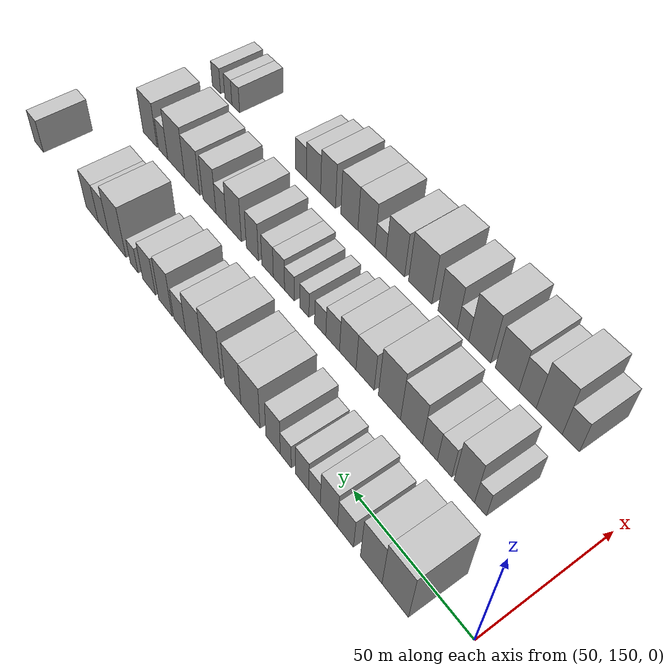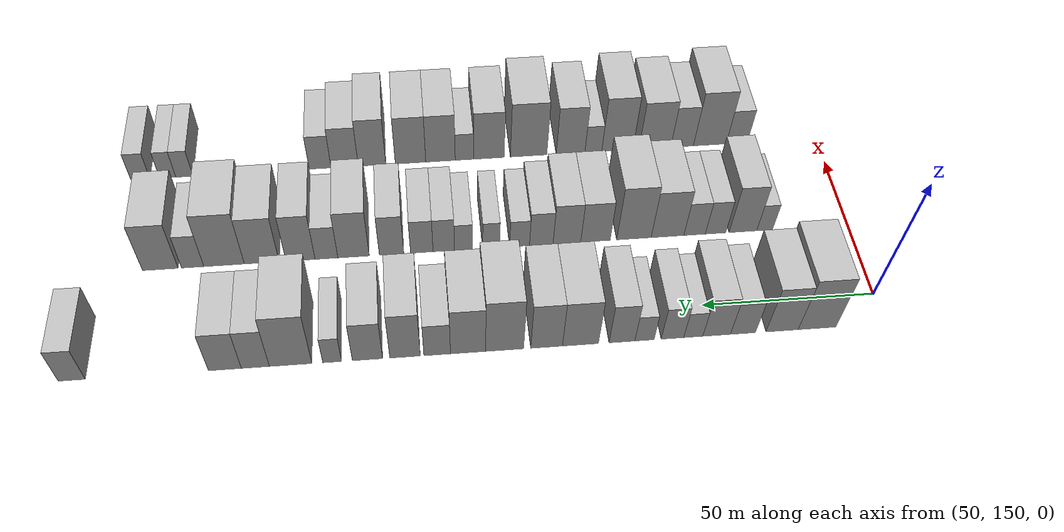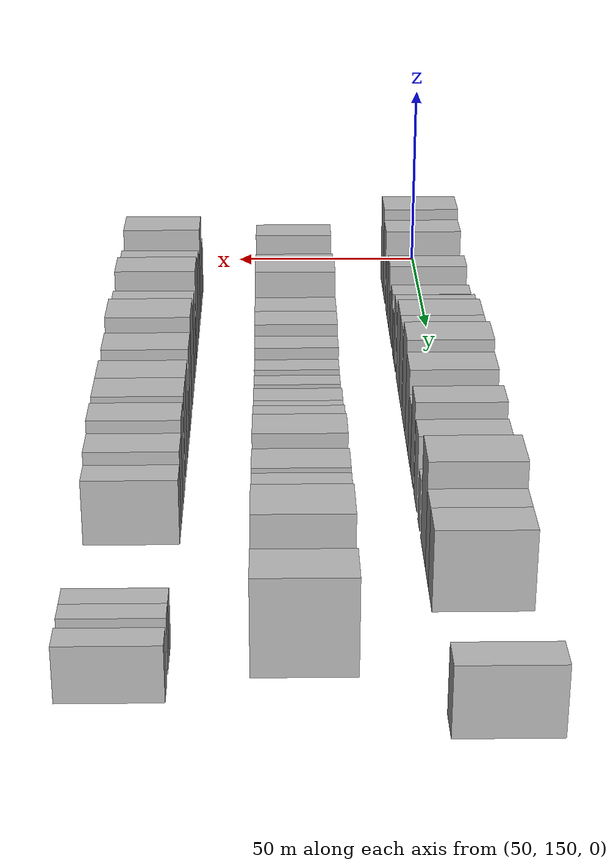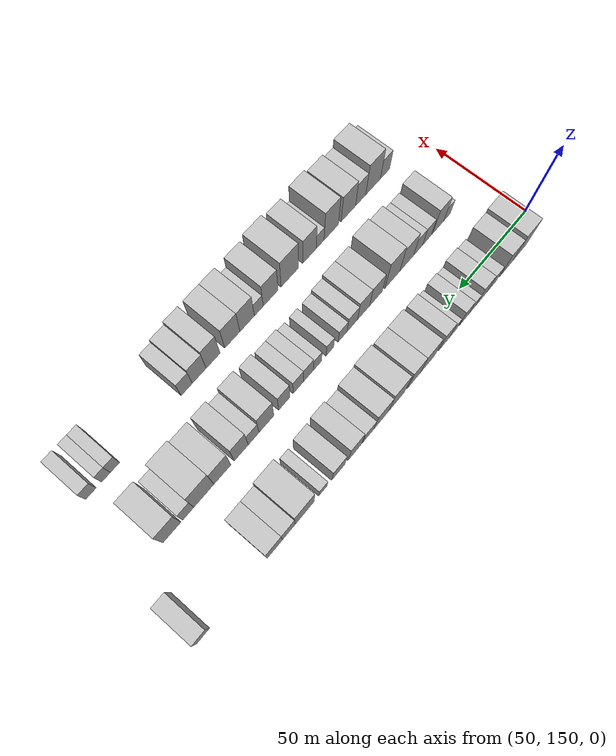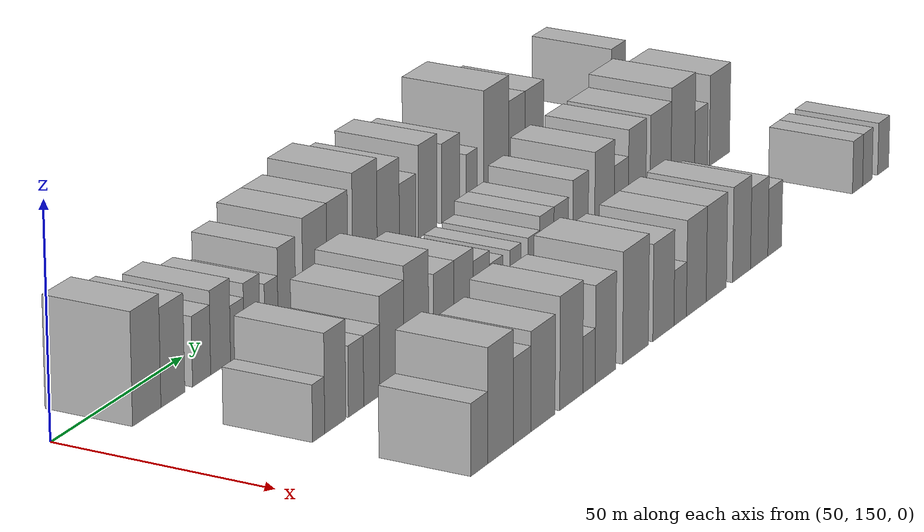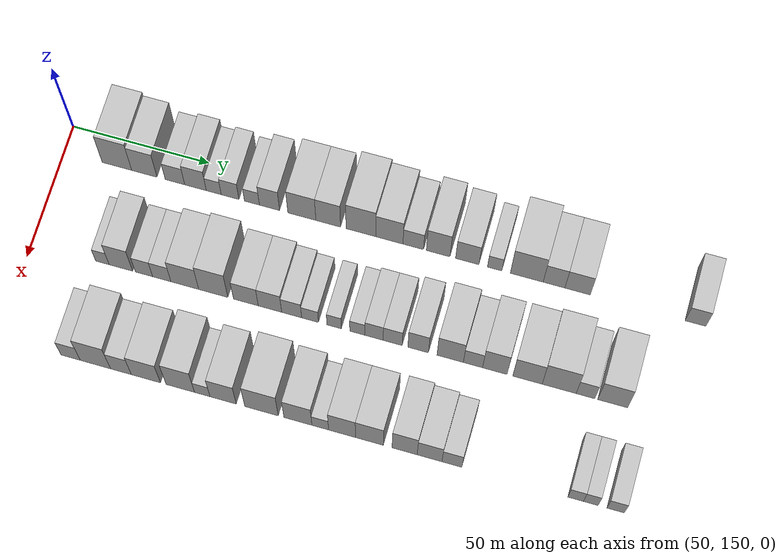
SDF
<sdf version="1.6">
 <world name="default">
  <model name="building_58">
   <static>1</static>
   <pose>50.0000 169.4029 0 0.000000 0.000000 0.000000</pose>
   <link name="link">
    <pose>0 0 12.00 0 0 0</pose>
    <collision name="collision"><geometry><box><size>20.0000 10.8196 24.0000</size></box></geometry></collision>
    <visual name="visual">
     <cast_shadows>0</cast_shadows>
     <geometry><box><size>20.0000 10.8196 24.0000</size></box></geometry>
     <material>
      <script>
       <uri>model://HANNAS_wall/materials/scripts</uri>
       <uri>model://HANNAS_wall/materials/textures</uri>
       <name>vrc/HANNAS_wall</name>
      </script>
     </material>
    </visual>
   </link>
  </model>
  <model name="building_59">
   <static>1</static>
   <pose>50.0000 179.4214 0 0.000000 0.000000 0.000000</pose>
   <link name="link">
    <pose>0 0 10.50 0 0 0</pose>
    <collision name="collision"><geometry><box><size>20.0000 9.2173 21.0000</size></box></geometry></collision>
    <visual name="visual">
     <cast_shadows>0</cast_shadows>
     <geometry><box><size>20.0000 9.2173 21.0000</size></box></geometry>
     <material>
      <script>
       <uri>model://HANNAS_wall/materials/scripts</uri>
       <uri>model://HANNAS_wall/materials/textures</uri>
       <name>vrc/HANNAS_wall</name>
      </script>
     </material>
    </visual>
   </link>
  </model>
  <model name="building_60">
   <static>1</static>
   <pose>50.0000 190.5906 0 0.000000 0.000000 0.000000</pose>
   <link name="link">
    <pose>0 0 7.50 0 0 0</pose>
    <collision name="collision"><geometry><box><size>20.0000 7.1212 15.0000</size></box></geometry></collision>
    <visual name="visual">
     <cast_shadows>0</cast_shadows>
     <geometry><box><size>20.0000 7.1212 15.0000</size></box></geometry>
     <material>
      <script>
       <uri>model://HANNAS_wall/materials/scripts</uri>
       <uri>model://HANNAS_wall/materials/textures</uri>
       <name>vrc/HANNAS_wall</name>
      </script>
     </material>
    </visual>
   </link>
  </model>
  <model name="building_61">
   <static>1</static>
   <pose>50.0000 198.0869 0 0.000000 0.000000 0.000000</pose>
   <link name="link">
    <pose>0 0 9.00 0 0 0</pose>
    <collision name="collision"><geometry><box><size>20.0000 7.8715 18.0000</size></box></geometry></collision>
    <visual name="visual">
     <cast_shadows>0</cast_shadows>
     <geometry><box><size>20.0000 7.8715 18.0000</size></box></geometry>
     <material>
      <script>
       <uri>model://HANNAS_wall/materials/scripts</uri>
       <uri>model://HANNAS_wall/materials/textures</uri>
       <name>vrc/HANNAS_wall</name>
      </script>
     </material>
    </visual>
   </link>
  </model>
  <model name="building_62">
   <static>1</static>
   <pose>50.0000 204.7309 0 0.000000 0.000000 0.000000</pose>
   <link name="link">
    <pose>0 0 6.00 0 0 0</pose>
    <collision name="collision"><geometry><box><size>20.0000 5.4163 12.0000</size></box></geometry></collision>
    <visual name="visual">
     <cast_shadows>0</cast_shadows>
     <geometry><box><size>20.0000 5.4163 12.0000</size></box></geometry>
     <material>
      <script>
       <uri>model://HANNAS_wall/materials/scripts</uri>
       <uri>model://HANNAS_wall/materials/textures</uri>
       <name>vrc/HANNAS_wall</name>
      </script>
     </material>
    </visual>
   </link>
  </model>
  <model name="building_63">
   <static>1</static>
   <pose>50.0000 210.6362 0 0.000000 0.000000 0.000000</pose>
   <link name="link">
    <pose>0 0 7.50 0 0 0</pose>
    <collision name="collision"><geometry><box><size>20.0000 6.3943 15.0000</size></box></geometry></collision>
    <visual name="visual">
     <cast_shadows>0</cast_shadows>
     <geometry><box><size>20.0000 6.3943 15.0000</size></box></geometry>
     <material>
      <script>
       <uri>model://HANNAS_wall/materials/scripts</uri>
       <uri>model://HANNAS_wall/materials/textures</uri>
       <name>vrc/HANNAS_wall</name>
      </script>
     </material>
    </visual>
   </link>
  </model>
  <model name="building_64">
   <static>1</static>
   <pose>50.0000 218.5451 0 0.000000 0.000000 0.000000</pose>
   <link name="link">
    <pose>0 0 6.00 0 0 0</pose>
    <collision name="collision"><geometry><box><size>20.0000 5.4235 12.0000</size></box></geometry></collision>
    <visual name="visual">
     <cast_shadows>0</cast_shadows>
     <geometry><box><size>20.0000 5.4235 12.0000</size></box></geometry>
     <material>
      <script>
       <uri>model://HANNAS_wall/materials/scripts</uri>
       <uri>model://HANNAS_wall/materials/textures</uri>
       <name>vrc/HANNAS_wall</name>
      </script>
     </material>
    </visual>
   </link>
  </model>
  <model name="building_65">
   <static>1</static>
   <pose>50.0000 224.8943 0 0.000000 0.000000 0.000000</pose>
   <link name="link">
    <pose>0 0 9.00 0 0 0</pose>
    <collision name="collision"><geometry><box><size>20.0000 7.2751 18.0000</size></box></geometry></collision>
    <visual name="visual">
     <cast_shadows>0</cast_shadows>
     <geometry><box><size>20.0000 7.2751 18.0000</size></box></geometry>
     <material>
      <script>
       <uri>model://HANNAS_wall/materials/scripts</uri>
       <uri>model://HANNAS_wall/materials/textures</uri>
       <name>vrc/HANNAS_wall</name>
      </script>
     </material>
    </visual>
   </link>
  </model>
  <model name="building_66">
   <static>1</static>
   <pose>50.0000 236.5839 0 0.000000 0.000000 0.000000</pose>
   <link name="link">
    <pose>0 0 10.50 0 0 0</pose>
    <collision name="collision"><geometry><box><size>20.0000 10.1041 21.0000</size></box></geometry></collision>
    <visual name="visual">
     <cast_shadows>0</cast_shadows>
     <geometry><box><size>20.0000 10.1041 21.0000</size></box></geometry>
     <material>
      <script>
       <uri>model://HANNAS_wall/materials/scripts</uri>
       <uri>model://HANNAS_wall/materials/textures</uri>
       <name>vrc/HANNAS_wall</name>
      </script>
     </material>
    </visual>
   </link>
  </model>
  <model name="building_67">
   <static>1</static>
   <pose>50.0000 246.0665 0 0.000000 0.000000 0.000000</pose>
   <link name="link">
    <pose>0 0 10.50 0 0 0</pose>
    <collision name="collision"><geometry><box><size>20.0000 8.8611 21.0000</size></box></geometry></collision>
    <visual name="visual">
     <cast_shadows>0</cast_shadows>
     <geometry><box><size>20.0000 8.8611 21.0000</size></box></geometry>
     <material>
      <script>
       <uri>model://HANNAS_wall/materials/scripts</uri>
       <uri>model://HANNAS_wall/materials/textures</uri>
       <name>vrc/HANNAS_wall</name>
      </script>
     </material>
    </visual>
   </link>
  </model>
  <model name="building_68">
   <static>1</static>
   <pose>50.0000 257.8040 0 0.000000 0.000000 0.000000</pose>
   <link name="link">
    <pose>0 0 12.00 0 0 0</pose>
    <collision name="collision"><geometry><box><size>20.0000 10.6139 24.0000</size></box></geometry></collision>
    <visual name="visual">
     <cast_shadows>0</cast_shadows>
     <geometry><box><size>20.0000 10.6139 24.0000</size></box></geometry>
     <material>
      <script>
       <uri>model://HANNAS_wall/materials/scripts</uri>
       <uri>model://HANNAS_wall/materials/textures</uri>
       <name>vrc/HANNAS_wall</name>
      </script>
     </material>
    </visual>
   </link>
  </model>
  <model name="building_69">
   <static>1</static>
   <pose>50.0000 267.9850 0 0.000000 0.000000 0.000000</pose>
   <link name="link">
    <pose>0 0 10.50 0 0 0</pose>
    <collision name="collision"><geometry><box><size>20.0000 9.7481 21.0000</size></box></geometry></collision>
    <visual name="visual">
     <cast_shadows>0</cast_shadows>
     <geometry><box><size>20.0000 9.7481 21.0000</size></box></geometry>
     <material>
      <script>
       <uri>model://HANNAS_wall/materials/scripts</uri>
       <uri>model://HANNAS_wall/materials/textures</uri>
       <name>vrc/HANNAS_wall</name>
      </script>
     </material>
    </visual>
   </link>
  </model>
  <model name="building_70">
   <static>1</static>
   <pose>50.0000 276.5355 0 0.000000 0.000000 0.000000</pose>
   <link name="link">
    <pose>0 0 7.50 0 0 0</pose>
    <collision name="collision"><geometry><box><size>20.0000 7.3529 15.0000</size></box></geometry></collision>
    <visual name="visual">
     <cast_shadows>0</cast_shadows>
     <geometry><box><size>20.0000 7.3529 15.0000</size></box></geometry>
     <material>
      <script>
       <uri>model://HANNAS_wall/materials/scripts</uri>
       <uri>model://HANNAS_wall/materials/textures</uri>
       <name>vrc/HANNAS_wall</name>
      </script>
     </material>
    </visual>
   </link>
  </model>
  <model name="building_71">
   <static>1</static>
   <pose>50.0000 285.4179 0 0.000000 0.000000 0.000000</pose>
   <link name="link">
    <pose>0 0 10.50 0 0 0</pose>
    <collision name="collision"><geometry><box><size>20.0000 8.4119 21.0000</size></box></geometry></collision>
    <visual name="visual">
     <cast_shadows>0</cast_shadows>
     <geometry><box><size>20.0000 8.4119 21.0000</size></box></geometry>
     <material>
      <script>
       <uri>model://HANNAS_wall/materials/scripts</uri>
       <uri>model://HANNAS_wall/materials/textures</uri>
       <name>vrc/HANNAS_wall</name>
      </script>
     </material>
    </visual>
   </link>
  </model>
  <model name="building_72">
   <static>1</static>
   <pose>50.0000 295.7765 0 0.000000 0.000000 0.000000</pose>
   <link name="link">
    <pose>0 0 9.00 0 0 0</pose>
    <collision name="collision"><geometry><box><size>20.0000 8.3053 18.0000</size></box></geometry></collision>
    <visual name="visual">
     <cast_shadows>0</cast_shadows>
     <geometry><box><size>20.0000 8.3053 18.0000</size></box></geometry>
     <material>
      <script>
       <uri>model://HANNAS_wall/materials/scripts</uri>
       <uri>model://HANNAS_wall/materials/textures</uri>
       <name>vrc/HANNAS_wall</name>
      </script>
     </material>
    </visual>
   </link>
  </model>
  <model name="building_73">
   <static>1</static>
   <pose>50.0000 305.4946 0 0.000000 0.000000 0.000000</pose>
   <link name="link">
    <pose>0 0 6.00 0 0 0</pose>
    <collision name="collision"><geometry><box><size>20.0000 5.1309 12.0000</size></box></geometry></collision>
    <visual name="visual">
     <cast_shadows>0</cast_shadows>
     <geometry><box><size>20.0000 5.1309 12.0000</size></box></geometry>
     <material>
      <script>
       <uri>model://HANNAS_wall/materials/scripts</uri>
       <uri>model://HANNAS_wall/materials/textures</uri>
       <name>vrc/HANNAS_wall</name>
      </script>
     </material>
    </visual>
   </link>
  </model>
  <model name="building_74">
   <static>1</static>
   <pose>50.0000 316.8688 0 0.000000 0.000000 0.000000</pose>
   <link name="link">
    <pose>0 0 12.00 0 0 0</pose>
    <collision name="collision"><geometry><box><size>20.0000 11.6175 24.0000</size></box></geometry></collision>
    <visual name="visual">
     <cast_shadows>0</cast_shadows>
     <geometry><box><size>20.0000 11.6175 24.0000</size></box></geometry>
     <material>
      <script>
       <uri>model://HANNAS_wall/materials/scripts</uri>
       <uri>model://HANNAS_wall/materials/textures</uri>
       <name>vrc/HANNAS_wall</name>
      </script>
     </material>
    </visual>
   </link>
  </model>
  <model name="building_75">
   <static>1</static>
   <pose>50.0000 326.4944 0 0.000000 0.000000 0.000000</pose>
   <link name="link">
    <pose>0 0 9.00 0 0 0</pose>
    <collision name="collision"><geometry><box><size>20.0000 7.6337 18.0000</size></box></geometry></collision>
    <visual name="visual">
     <cast_shadows>0</cast_shadows>
     <geometry><box><size>20.0000 7.6337 18.0000</size></box></geometry>
     <material>
      <script>
       <uri>model://HANNAS_wall/materials/scripts</uri>
       <uri>model://HANNAS_wall/materials/textures</uri>
       <name>vrc/HANNAS_wall</name>
      </script>
     </material>
    </visual>
   </link>
  </model>
  <model name="building_76">
   <static>1</static>
   <pose>50.0000 334.7867 0 0.000000 0.000000 0.000000</pose>
   <link name="link">
    <pose>0 0 9.00 0 0 0</pose>
    <collision name="collision"><geometry><box><size>20.0000 8.9509 18.0000</size></box></geometry></collision>
    <visual name="visual">
     <cast_shadows>0</cast_shadows>
     <geometry><box><size>20.0000 8.9509 18.0000</size></box></geometry>
     <material>
      <script>
       <uri>model://HANNAS_wall/materials/scripts</uri>
       <uri>model://HANNAS_wall/materials/textures</uri>
       <name>vrc/HANNAS_wall</name>
      </script>
     </material>
    </visual>
   </link>
  </model>
  <model name="building_77">
   <static>1</static>
   <pose>50.0000 376.1292 0 0.000000 0.000000 0.000000</pose>
   <link name="link">
    <pose>0 0 7.50 0 0 0</pose>
    <collision name="collision"><geometry><box><size>20.0000 7.2447 15.0000</size></box></geometry></collision>
    <visual name="visual">
     <cast_shadows>0</cast_shadows>
     <geometry><box><size>20.0000 7.2447 15.0000</size></box></geometry>
     <material>
      <script>
       <uri>model://HANNAS_wall/materials/scripts</uri>
       <uri>model://HANNAS_wall/materials/textures</uri>
       <name>vrc/HANNAS_wall</name>
      </script>
     </material>
    </visual>
   </link>
  </model>
  <model name="building_139">
   <static>1</static>
   <pose>85.0000 175.6391 0 0.000000 0.000000 0.000000</pose>
   <link name="link">
    <pose>0 0 6.00 0 0 0</pose>
    <collision name="collision"><geometry><box><size>20.0000 4.8430 12.0000</size></box></geometry></collision>
    <visual name="visual">
     <cast_shadows>0</cast_shadows>
     <geometry><box><size>20.0000 4.8430 12.0000</size></box></geometry>
     <material>
      <script>
       <uri>model://HANNAS_wall/materials/scripts</uri>
       <uri>model://HANNAS_wall/materials/textures</uri>
       <name>vrc/HANNAS_wall</name>
      </script>
     </material>
    </visual>
   </link>
  </model>
  <model name="building_140">
   <static>1</static>
   <pose>85.0000 182.2933 0 0.000000 0.000000 0.000000</pose>
   <link name="link">
    <pose>0 0 10.50 0 0 0</pose>
    <collision name="collision"><geometry><box><size>20.0000 8.4655 21.0000</size></box></geometry></collision>
    <visual name="visual">
     <cast_shadows>0</cast_shadows>
     <geometry><box><size>20.0000 8.4655 21.0000</size></box></geometry>
     <material>
      <script>
       <uri>model://HANNAS_wall/materials/scripts</uri>
       <uri>model://HANNAS_wall/materials/textures</uri>
       <name>vrc/HANNAS_wall</name>
      </script>
     </material>
    </visual>
   </link>
  </model>
  <model name="building_141">
   <static>1</static>
   <pose>85.0000 190.6398 0 0.000000 0.000000 0.000000</pose>
   <link name="link">
    <pose>0 0 7.50 0 0 0</pose>
    <collision name="collision"><geometry><box><size>20.0000 6.2275 15.0000</size></box></geometry></collision>
    <visual name="visual">
     <cast_shadows>0</cast_shadows>
     <geometry><box><size>20.0000 6.2275 15.0000</size></box></geometry>
     <material>
      <script>
       <uri>model://HANNAS_wall/materials/scripts</uri>
       <uri>model://HANNAS_wall/materials/textures</uri>
       <name>vrc/HANNAS_wall</name>
      </script>
     </material>
    </visual>
   </link>
  </model>
  <model name="building_142">
   <static>1</static>
   <pose>85.0000 197.0295 0 0.000000 0.000000 0.000000</pose>
   <link name="link">
    <pose>0 0 7.50 0 0 0</pose>
    <collision name="collision"><geometry><box><size>20.0000 6.5520 15.0000</size></box></geometry></collision>
    <visual name="visual">
     <cast_shadows>0</cast_shadows>
     <geometry><box><size>20.0000 6.5520 15.0000</size></box></geometry>
     <material>
      <script>
       <uri>model://HANNAS_wall/materials/scripts</uri>
       <uri>model://HANNAS_wall/materials/textures</uri>
       <name>vrc/HANNAS_wall</name>
      </script>
     </material>
    </visual>
   </link>
  </model>
  <model name="building_143">
   <static>1</static>
   <pose>85.0000 205.2794 0 0.000000 0.000000 0.000000</pose>
   <link name="link">
    <pose>0 0 10.50 0 0 0</pose>
    <collision name="collision"><geometry><box><size>20.0000 9.9479 21.0000</size></box></geometry></collision>
    <visual name="visual">
     <cast_shadows>0</cast_shadows>
     <geometry><box><size>20.0000 9.9479 21.0000</size></box></geometry>
     <material>
      <script>
       <uri>model://HANNAS_wall/materials/scripts</uri>
       <uri>model://HANNAS_wall/materials/textures</uri>
       <name>vrc/HANNAS_wall</name>
      </script>
     </material>
    </visual>
   </link>
  </model>
  <model name="building_144">
   <static>1</static>
   <pose>85.0000 215.4670 0 0.000000 0.000000 0.000000</pose>
   <link name="link">
    <pose>0 0 12.00 0 0 0</pose>
    <collision name="collision"><geometry><box><size>20.0000 10.4274 24.0000</size></box></geometry></collision>
    <visual name="visual">
     <cast_shadows>0</cast_shadows>
     <geometry><box><size>20.0000 10.4274 24.0000</size></box></geometry>
     <material>
      <script>
       <uri>model://HANNAS_wall/materials/scripts</uri>
       <uri>model://HANNAS_wall/materials/textures</uri>
       <name>vrc/HANNAS_wall</name>
      </script>
     </material>
    </visual>
   </link>
  </model>
  <model name="building_145">
   <static>1</static>
   <pose>85.0000 227.1055 0 0.000000 0.000000 0.000000</pose>
   <link name="link">
    <pose>0 0 9.00 0 0 0</pose>
    <collision name="collision"><geometry><box><size>20.0000 8.8495 18.0000</size></box></geometry></collision>
    <visual name="visual">
     <cast_shadows>0</cast_shadows>
     <geometry><box><size>20.0000 8.8495 18.0000</size></box></geometry>
     <material>
      <script>
       <uri>model://HANNAS_wall/materials/scripts</uri>
       <uri>model://HANNAS_wall/materials/textures</uri>
       <name>vrc/HANNAS_wall</name>
      </script>
     </material>
    </visual>
   </link>
  </model>
  <model name="building_146">
   <static>1</static>
   <pose>85.0000 235.6977 0 0.000000 0.000000 0.000000</pose>
   <link name="link">
    <pose>0 0 9.00 0 0 0</pose>
    <collision name="collision"><geometry><box><size>20.0000 8.3350 18.0000</size></box></geometry></collision>
    <visual name="visual">
     <cast_shadows>0</cast_shadows>
     <geometry><box><size>20.0000 8.3350 18.0000</size></box></geometry>
     <material>
      <script>
       <uri>model://HANNAS_wall/materials/scripts</uri>
       <uri>model://HANNAS_wall/materials/textures</uri>
       <name>vrc/HANNAS_wall</name>
      </script>
     </material>
    </visual>
   </link>
  </model>
  <model name="building_147">
   <static>1</static>
   <pose>85.0000 243.4064 0 0.000000 0.000000 0.000000</pose>
   <link name="link">
    <pose>0 0 7.50 0 0 0</pose>
    <collision name="collision"><geometry><box><size>20.0000 7.0822 15.0000</size></box></geometry></collision>
    <visual name="visual">
     <cast_shadows>0</cast_shadows>
     <geometry><box><size>20.0000 7.0822 15.0000</size></box></geometry>
     <material>
      <script>
       <uri>model://HANNAS_wall/materials/scripts</uri>
       <uri>model://HANNAS_wall/materials/textures</uri>
       <name>vrc/HANNAS_wall</name>
      </script>
     </material>
    </visual>
   </link>
  </model>
  <model name="building_148">
   <static>1</static>
   <pose>85.0000 249.9218 0 0.000000 0.000000 0.000000</pose>
   <link name="link">
    <pose>0 0 6.00 0 0 0</pose>
    <collision name="collision"><geometry><box><size>20.0000 5.9487 12.0000</size></box></geometry></collision>
    <visual name="visual">
     <cast_shadows>0</cast_shadows>
     <geometry><box><size>20.0000 5.9487 12.0000</size></box></geometry>
     <material>
      <script>
       <uri>model://HANNAS_wall/materials/scripts</uri>
       <uri>model://HANNAS_wall/materials/textures</uri>
       <name>vrc/HANNAS_wall</name>
      </script>
     </material>
    </visual>
   </link>
  </model>
  <model name="building_149">
   <static>1</static>
   <pose>85.0000 258.4388 0 0.000000 0.000000 0.000000</pose>
   <link name="link">
    <pose>0 0 6.00 0 0 0</pose>
    <collision name="collision"><geometry><box><size>20.0000 5.0853 12.0000</size></box></geometry></collision>
    <visual name="visual">
     <cast_shadows>0</cast_shadows>
     <geometry><box><size>20.0000 5.0853 12.0000</size></box></geometry>
     <material>
      <script>
       <uri>model://HANNAS_wall/materials/scripts</uri>
       <uri>model://HANNAS_wall/materials/textures</uri>
       <name>vrc/HANNAS_wall</name>
      </script>
     </material>
    </visual>
   </link>
  </model>
  <model name="building_150">
   <static>1</static>
   <pose>85.0000 266.6696 0 0.000000 0.000000 0.000000</pose>
   <link name="link">
    <pose>0 0 6.00 0 0 0</pose>
    <collision name="collision"><geometry><box><size>20.0000 5.3763 12.0000</size></box></geometry></collision>
    <visual name="visual">
     <cast_shadows>0</cast_shadows>
     <geometry><box><size>20.0000 5.3763 12.0000</size></box></geometry>
     <material>
      <script>
       <uri>model://HANNAS_wall/materials/scripts</uri>
       <uri>model://HANNAS_wall/materials/textures</uri>
       <name>vrc/HANNAS_wall</name>
      </script>
     </material>
    </visual>
   </link>
  </model>
  <model name="building_151">
   <static>1</static>
   <pose>85.0000 272.5526 0 0.000000 0.000000 0.000000</pose>
   <link name="link">
    <pose>0 0 7.50 0 0 0</pose>
    <collision name="collision"><geometry><box><size>20.0000 6.3896 15.0000</size></box></geometry></collision>
    <visual name="visual">
     <cast_shadows>0</cast_shadows>
     <geometry><box><size>20.0000 6.3896 15.0000</size></box></geometry>
     <material>
      <script>
       <uri>model://HANNAS_wall/materials/scripts</uri>
       <uri>model://HANNAS_wall/materials/textures</uri>
       <name>vrc/HANNAS_wall</name>
      </script>
     </material>
    </visual>
   </link>
  </model>
  <model name="building_152">
   <static>1</static>
   <pose>85.0000 279.0892 0 0.000000 0.000000 0.000000</pose>
   <link name="link">
    <pose>0 0 7.50 0 0 0</pose>
    <collision name="collision"><geometry><box><size>20.0000 6.6836 15.0000</size></box></geometry></collision>
    <visual name="visual">
     <cast_shadows>0</cast_shadows>
     <geometry><box><size>20.0000 6.6836 15.0000</size></box></geometry>
     <material>
      <script>
       <uri>model://HANNAS_wall/materials/scripts</uri>
       <uri>model://HANNAS_wall/materials/textures</uri>
       <name>vrc/HANNAS_wall</name>
      </script>
     </material>
    </visual>
   </link>
  </model>
  <model name="building_153">
   <static>1</static>
   <pose>85.0000 288.0435 0 0.000000 0.000000 0.000000</pose>
   <link name="link">
    <pose>0 0 9.00 0 0 0</pose>
    <collision name="collision"><geometry><box><size>20.0000 7.2252 18.0000</size></box></geometry></collision>
    <visual name="visual">
     <cast_shadows>0</cast_shadows>
     <geometry><box><size>20.0000 7.2252 18.0000</size></box></geometry>
     <material>
      <script>
       <uri>model://HANNAS_wall/materials/scripts</uri>
       <uri>model://HANNAS_wall/materials/textures</uri>
       <name>vrc/HANNAS_wall</name>
      </script>
     </material>
    </visual>
   </link>
  </model>
  <model name="building_154">
   <static>1</static>
   <pose>85.0000 299.2843 0 0.000000 0.000000 0.000000</pose>
   <link name="link">
    <pose>0 0 10.50 0 0 0</pose>
    <collision name="collision"><geometry><box><size>20.0000 9.2564 21.0000</size></box></geometry></collision>
    <visual name="visual">
     <cast_shadows>0</cast_shadows>
     <geometry><box><size>20.0000 9.2564 21.0000</size></box></geometry>
     <material>
      <script>
       <uri>model://HANNAS_wall/materials/scripts</uri>
       <uri>model://HANNAS_wall/materials/textures</uri>
       <name>vrc/HANNAS_wall</name>
      </script>
     </material>
    </visual>
   </link>
  </model>
  <model name="building_155">
   <static>1</static>
   <pose>85.0000 307.2682 0 0.000000 0.000000 0.000000</pose>
   <link name="link">
    <pose>0 0 7.50 0 0 0</pose>
    <collision name="collision"><geometry><box><size>20.0000 6.7113 15.0000</size></box></geometry></collision>
    <visual name="visual">
     <cast_shadows>0</cast_shadows>
     <geometry><box><size>20.0000 6.7113 15.0000</size></box></geometry>
     <material>
      <script>
       <uri>model://HANNAS_wall/materials/scripts</uri>
       <uri>model://HANNAS_wall/materials/textures</uri>
       <name>vrc/HANNAS_wall</name>
      </script>
     </material>
    </visual>
   </link>
  </model>
  <model name="building_156">
   <static>1</static>
   <pose>85.0000 314.8908 0 0.000000 0.000000 0.000000</pose>
   <link name="link">
    <pose>0 0 10.50 0 0 0</pose>
    <collision name="collision"><geometry><box><size>20.0000 8.5340 21.0000</size></box></geometry></collision>
    <visual name="visual">
     <cast_shadows>0</cast_shadows>
     <geometry><box><size>20.0000 8.5340 21.0000</size></box></geometry>
     <material>
      <script>
       <uri>model://HANNAS_wall/materials/scripts</uri>
       <uri>model://HANNAS_wall/materials/textures</uri>
       <name>vrc/HANNAS_wall</name>
      </script>
     </material>
    </visual>
   </link>
  </model>
  <model name="building_157">
   <static>1</static>
   <pose>85.0000 326.2635 0 0.000000 0.000000 0.000000</pose>
   <link name="link">
    <pose>0 0 10.50 0 0 0</pose>
    <collision name="collision"><geometry><box><size>20.0000 10.2114 21.0000</size></box></geometry></collision>
    <visual name="visual">
     <cast_shadows>0</cast_shadows>
     <geometry><box><size>20.0000 10.2114 21.0000</size></box></geometry>
     <material>
      <script>
       <uri>model://HANNAS_wall/materials/scripts</uri>
       <uri>model://HANNAS_wall/materials/textures</uri>
       <name>vrc/HANNAS_wall</name>
      </script>
     </material>
    </visual>
   </link>
  </model>
  <model name="building_158">
   <static>1</static>
   <pose>85.0000 337.2793 0 0.000000 0.000000 0.000000</pose>
   <link name="link">
    <pose>0 0 12.00 0 0 0</pose>
    <collision name="collision"><geometry><box><size>20.0000 11.8201 24.0000</size></box></geometry></collision>
    <visual name="visual">
     <cast_shadows>0</cast_shadows>
     <geometry><box><size>20.0000 11.8201 24.0000</size></box></geometry>
     <material>
      <script>
       <uri>model://HANNAS_wall/materials/scripts</uri>
       <uri>model://HANNAS_wall/materials/textures</uri>
       <name>vrc/HANNAS_wall</name>
      </script>
     </material>
    </visual>
   </link>
  </model>
  <model name="building_159">
   <static>1</static>
   <pose>85.0000 346.4257 0 0.000000 0.000000 0.000000</pose>
   <link name="link">
    <pose>0 0 7.50 0 0 0</pose>
    <collision name="collision"><geometry><box><size>20.0000 6.4727 15.0000</size></box></geometry></collision>
    <visual name="visual">
     <cast_shadows>0</cast_shadows>
     <geometry><box><size>20.0000 6.4727 15.0000</size></box></geometry>
     <material>
      <script>
       <uri>model://HANNAS_wall/materials/scripts</uri>
       <uri>model://HANNAS_wall/materials/textures</uri>
       <name>vrc/HANNAS_wall</name>
      </script>
     </material>
    </visual>
   </link>
  </model>
  <model name="building_160">
   <static>1</static>
   <pose>85.0000 355.8155 0 0.000000 0.000000 0.000000</pose>
   <link name="link">
    <pose>0 0 10.50 0 0 0</pose>
    <collision name="collision"><geometry><box><size>20.0000 10.3069 21.0000</size></box></geometry></collision>
    <visual name="visual">
     <cast_shadows>0</cast_shadows>
     <geometry><box><size>20.0000 10.3069 21.0000</size></box></geometry>
     <material>
      <script>
       <uri>model://HANNAS_wall/materials/scripts</uri>
       <uri>model://HANNAS_wall/materials/textures</uri>
       <name>vrc/HANNAS_wall</name>
      </script>
     </material>
    </visual>
   </link>
  </model>
  <model name="building_223">
   <static>1</static>
   <pose>120.0000 175.9668 0 0.000000 0.000000 0.000000</pose>
   <link name="link">
    <pose>0 0 7.50 0 0 0</pose>
    <collision name="collision"><geometry><box><size>20.0000 6.8644 15.0000</size></box></geometry></collision>
    <visual name="visual">
     <cast_shadows>0</cast_shadows>
     <geometry><box><size>20.0000 6.8644 15.0000</size></box></geometry>
     <material>
      <script>
       <uri>model://HANNAS_wall/materials/scripts</uri>
       <uri>model://HANNAS_wall/materials/textures</uri>
       <name>vrc/HANNAS_wall</name>
      </script>
     </material>
    </visual>
   </link>
  </model>
  <model name="building_224">
   <static>1</static>
   <pose>120.0000 184.7615 0 0.000000 0.000000 0.000000</pose>
   <link name="link">
    <pose>0 0 12.00 0 0 0</pose>
    <collision name="collision"><geometry><box><size>20.0000 10.7251 24.0000</size></box></geometry></collision>
    <visual name="visual">
     <cast_shadows>0</cast_shadows>
     <geometry><box><size>20.0000 10.7251 24.0000</size></box></geometry>
     <material>
      <script>
       <uri>model://HANNAS_wall/materials/scripts</uri>
       <uri>model://HANNAS_wall/materials/textures</uri>
       <name>vrc/HANNAS_wall</name>
      </script>
     </material>
    </visual>
   </link>
  </model>
  <model name="building_225">
   <static>1</static>
   <pose>120.0000 193.8026 0 0.000000 0.000000 0.000000</pose>
   <link name="link">
    <pose>0 0 9.00 0 0 0</pose>
    <collision name="collision"><geometry><box><size>20.0000 7.3569 18.0000</size></box></geometry></collision>
    <visual name="visual">
     <cast_shadows>0</cast_shadows>
     <geometry><box><size>20.0000 7.3569 18.0000</size></box></geometry>
     <material>
      <script>
       <uri>model://HANNAS_wall/materials/scripts</uri>
       <uri>model://HANNAS_wall/materials/textures</uri>
       <name>vrc/HANNAS_wall</name>
      </script>
     </material>
    </visual>
   </link>
  </model>
  <model name="building_226">
   <static>1</static>
   <pose>120.0000 202.6344 0 0.000000 0.000000 0.000000</pose>
   <link name="link">
    <pose>0 0 10.50 0 0 0</pose>
    <collision name="collision"><geometry><box><size>20.0000 10.3068 21.0000</size></box></geometry></collision>
    <visual name="visual">
     <cast_shadows>0</cast_shadows>
     <geometry><box><size>20.0000 10.3068 21.0000</size></box></geometry>
     <material>
      <script>
       <uri>model://HANNAS_wall/materials/scripts</uri>
       <uri>model://HANNAS_wall/materials/textures</uri>
       <name>vrc/HANNAS_wall</name>
      </script>
     </material>
    </visual>
   </link>
  </model>
  <model name="building_227">
   <static>1</static>
   <pose>120.0000 214.8118 0 0.000000 0.000000 0.000000</pose>
   <link name="link">
    <pose>0 0 12.00 0 0 0</pose>
    <collision name="collision"><geometry><box><size>20.0000 10.0480 24.0000</size></box></geometry></collision>
    <visual name="visual">
     <cast_shadows>0</cast_shadows>
     <geometry><box><size>20.0000 10.0480 24.0000</size></box></geometry>
     <material>
      <script>
       <uri>model://HANNAS_wall/materials/scripts</uri>
       <uri>model://HANNAS_wall/materials/textures</uri>
       <name>vrc/HANNAS_wall</name>
      </script>
     </material>
    </visual>
   </link>
  </model>
  <model name="building_228">
   <static>1</static>
   <pose>120.0000 222.5471 0 0.000000 0.000000 0.000000</pose>
   <link name="link">
    <pose>0 0 6.00 0 0 0</pose>
    <collision name="collision"><geometry><box><size>20.0000 5.4225 12.0000</size></box></geometry></collision>
    <visual name="visual">
     <cast_shadows>0</cast_shadows>
     <geometry><box><size>20.0000 5.4225 12.0000</size></box></geometry>
     <material>
      <script>
       <uri>model://HANNAS_wall/materials/scripts</uri>
       <uri>model://HANNAS_wall/materials/textures</uri>
       <name>vrc/HANNAS_wall</name>
      </script>
     </material>
    </visual>
   </link>
  </model>
  <model name="building_229">
   <static>1</static>
   <pose>120.0000 229.8653 0 0.000000 0.000000 0.000000</pose>
   <link name="link">
    <pose>0 0 10.50 0 0 0</pose>
    <collision name="collision"><geometry><box><size>20.0000 9.2140 21.0000</size></box></geometry></collision>
    <visual name="visual">
     <cast_shadows>0</cast_shadows>
     <geometry><box><size>20.0000 9.2140 21.0000</size></box></geometry>
     <material>
      <script>
       <uri>model://HANNAS_wall/materials/scripts</uri>
       <uri>model://HANNAS_wall/materials/textures</uri>
       <name>vrc/HANNAS_wall</name>
      </script>
     </material>
    </visual>
   </link>
  </model>
  <model name="building_230">
   <static>1</static>
   <pose>120.0000 243.3256 0 0.000000 0.000000 0.000000</pose>
   <link name="link">
    <pose>0 0 12.00 0 0 0</pose>
    <collision name="collision"><geometry><box><size>20.0000 11.7066 24.0000</size></box></geometry></collision>
    <visual name="visual">
     <cast_shadows>0</cast_shadows>
     <geometry><box><size>20.0000 11.7066 24.0000</size></box></geometry>
     <material>
      <script>
       <uri>model://HANNAS_wall/materials/scripts</uri>
       <uri>model://HANNAS_wall/materials/textures</uri>
       <name>vrc/HANNAS_wall</name>
      </script>
     </material>
    </visual>
   </link>
  </model>
  <model name="building_231">
   <static>1</static>
   <pose>120.0000 256.0604 0 0.000000 0.000000 0.000000</pose>
   <link name="link">
    <pose>0 0 10.50 0 0 0</pose>
    <collision name="collision"><geometry><box><size>20.0000 9.7629 21.0000</size></box></geometry></collision>
    <visual name="visual">
     <cast_shadows>0</cast_shadows>
     <geometry><box><size>20.0000 9.7629 21.0000</size></box></geometry>
     <material>
      <script>
       <uri>model://HANNAS_wall/materials/scripts</uri>
       <uri>model://HANNAS_wall/materials/textures</uri>
       <name>vrc/HANNAS_wall</name>
      </script>
     </material>
    </visual>
   </link>
  </model>
  <model name="building_232">
   <static>1</static>
   <pose>120.0000 263.8484 0 0.000000 0.000000 0.000000</pose>
   <link name="link">
    <pose>0 0 6.00 0 0 0</pose>
    <collision name="collision"><geometry><box><size>20.0000 5.8131 12.0000</size></box></geometry></collision>
    <visual name="visual">
     <cast_shadows>0</cast_shadows>
     <geometry><box><size>20.0000 5.8131 12.0000</size></box></geometry>
     <material>
      <script>
       <uri>model://HANNAS_wall/materials/scripts</uri>
       <uri>model://HANNAS_wall/materials/textures</uri>
       <name>vrc/HANNAS_wall</name>
      </script>
     </material>
    </visual>
   </link>
  </model>
  <model name="building_233">
   <static>1</static>
   <pose>120.0000 271.4404 0 0.000000 0.000000 0.000000</pose>
   <link name="link">
    <pose>0 0 10.50 0 0 0</pose>
    <collision name="collision"><geometry><box><size>20.0000 9.3709 21.0000</size></box></geometry></collision>
    <visual name="visual">
     <cast_shadows>0</cast_shadows>
     <geometry><box><size>20.0000 9.3709 21.0000</size></box></geometry>
     <material>
      <script>
       <uri>model://HANNAS_wall/materials/scripts</uri>
       <uri>model://HANNAS_wall/materials/textures</uri>
       <name>vrc/HANNAS_wall</name>
      </script>
     </material>
    </visual>
   </link>
  </model>
  <model name="building_234">
   <static>1</static>
   <pose>120.0000 280.9506 0 0.000000 0.000000 0.000000</pose>
   <link name="link">
    <pose>0 0 10.50 0 0 0</pose>
    <collision name="collision"><geometry><box><size>20.0000 9.6496 21.0000</size></box></geometry></collision>
    <visual name="visual">
     <cast_shadows>0</cast_shadows>
     <geometry><box><size>20.0000 9.6496 21.0000</size></box></geometry>
     <material>
      <script>
       <uri>model://HANNAS_wall/materials/scripts</uri>
       <uri>model://HANNAS_wall/materials/textures</uri>
       <name>vrc/HANNAS_wall</name>
      </script>
     </material>
    </visual>
   </link>
  </model>
  <model name="building_235">
   <static>1</static>
   <pose>120.0000 293.1263 0 0.000000 0.000000 0.000000</pose>
   <link name="link">
    <pose>0 0 10.50 0 0 0</pose>
    <collision name="collision"><geometry><box><size>20.0000 8.7018 21.0000</size></box></geometry></collision>
    <visual name="visual">
     <cast_shadows>0</cast_shadows>
     <geometry><box><size>20.0000 8.7018 21.0000</size></box></geometry>
     <material>
      <script>
       <uri>model://HANNAS_wall/materials/scripts</uri>
       <uri>model://HANNAS_wall/materials/textures</uri>
       <name>vrc/HANNAS_wall</name>
      </script>
     </material>
    </visual>
   </link>
  </model>
  <model name="building_236">
   <static>1</static>
   <pose>120.0000 301.7592 0 0.000000 0.000000 0.000000</pose>
   <link name="link">
    <pose>0 0 9.00 0 0 0</pose>
    <collision name="collision"><geometry><box><size>20.0000 8.5639 18.0000</size></box></geometry></collision>
    <visual name="visual">
     <cast_shadows>0</cast_shadows>
     <geometry><box><size>20.0000 8.5639 18.0000</size></box></geometry>
     <material>
      <script>
       <uri>model://HANNAS_wall/materials/scripts</uri>
       <uri>model://HANNAS_wall/materials/textures</uri>
       <name>vrc/HANNAS_wall</name>
      </script>
     </material>
    </visual>
   </link>
  </model>
  <model name="building_237">
   <static>1</static>
   <pose>120.0000 309.4644 0 0.000000 0.000000 0.000000</pose>
   <link name="link">
    <pose>0 0 7.50 0 0 0</pose>
    <collision name="collision"><geometry><box><size>20.0000 6.8465 15.0000</size></box></geometry></collision>
    <visual name="visual">
     <cast_shadows>0</cast_shadows>
     <geometry><box><size>20.0000 6.8465 15.0000</size></box></geometry>
     <material>
      <script>
       <uri>model://HANNAS_wall/materials/scripts</uri>
       <uri>model://HANNAS_wall/materials/textures</uri>
       <name>vrc/HANNAS_wall</name>
      </script>
     </material>
    </visual>
   </link>
  </model>
  <model name="building_238">
   <static>1</static>
   <pose>120.0000 351.9017 0 0.000000 0.000000 0.000000</pose>
   <link name="link">
    <pose>0 0 6.00 0 0 0</pose>
    <collision name="collision"><geometry><box><size>20.0000 5.3427 12.0000</size></box></geometry></collision>
    <visual name="visual">
     <cast_shadows>0</cast_shadows>
     <geometry><box><size>20.0000 5.3427 12.0000</size></box></geometry>
     <material>
      <script>
       <uri>model://HANNAS_wall/materials/scripts</uri>
       <uri>model://HANNAS_wall/materials/textures</uri>
       <name>vrc/HANNAS_wall</name>
      </script>
     </material>
    </visual>
   </link>
  </model>
  <model name="building_239">
   <static>1</static>
   <pose>120.0000 357.0716 0 0.000000 0.000000 0.000000</pose>
   <link name="link">
    <pose>0 0 6.00 0 0 0</pose>
    <collision name="collision"><geometry><box><size>20.0000 4.9972 12.0000</size></box></geometry></collision>
    <visual name="visual">
     <cast_shadows>0</cast_shadows>
     <geometry><box><size>20.0000 4.9972 12.0000</size></box></geometry>
     <material>
      <script>
       <uri>model://HANNAS_wall/materials/scripts</uri>
       <uri>model://HANNAS_wall/materials/textures</uri>
       <name>vrc/HANNAS_wall</name>
      </script>
     </material>
    </visual>
   </link>
  </model>
  <model name="building_240">
   <static>1</static>
   <pose>120.0000 365.5274 0 0.000000 0.000000 0.000000</pose>
   <link name="link">
    <pose>0 0 6.00 0 0 0</pose>
    <collision name="collision"><geometry><box><size>20.0000 5.9143 12.0000</size></box></geometry></collision>
    <visual name="visual">
     <cast_shadows>0</cast_shadows>
     <geometry><box><size>20.0000 5.9143 12.0000</size></box></geometry>
     <material>
      <script>
       <uri>model://HANNAS_wall/materials/scripts</uri>
       <uri>model://HANNAS_wall/materials/textures</uri>
       <name>vrc/HANNAS_wall</name>
      </script>
     </material>
    </visual>
   </link>
  </model>
 </world>
</sdf>
